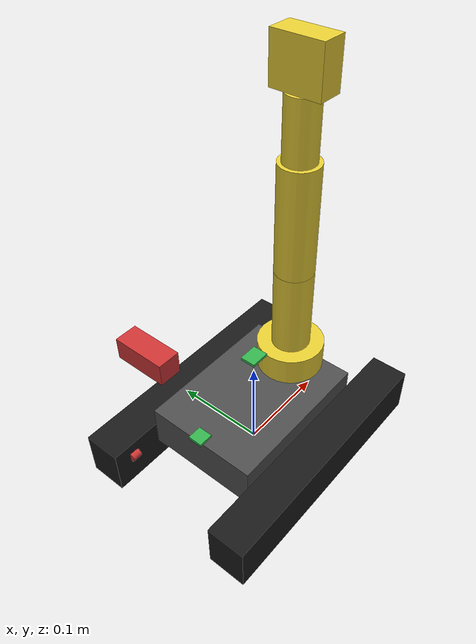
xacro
<?xml version="1.0"?>
<robot xmlns:xacro="http://www.ros.org/wiki/xacro" name="argos">

  <!-- Chassis dimensions (approximate — tracked Pi robot)                -->
  <xacro:property name="chassis_length"  value="0.165" /><!-- body/platform length (measured) -->
  <xacro:property name="track_length"   value="0.275" /><!-- track length end-to-end (measured) -->
  <xacro:property name="chassis_width"  value="0.120" /><!-- body width: total 200mm - 2x40mm tracks (measured) -->
  <xacro:property name="chassis_height" value="0.045" /><!-- body height: top at 70mm, track_radius=25mm -->
  <xacro:property name="track_radius"   value="0.025" /><!-- 50mm diameter drive wheels (measured) -->
  <xacro:property name="track_width"    value="0.040" /><!-- each track width (measured); connects at rear axle, ~90mm mid, front of body -->
  <xacro:property name="track_separation" value="${chassis_width + track_width}" />

  <!-- OWI-535 arm dimensions (approximate, metres)                       -->
  <xacro:property name="arm_base_height"    value="0.030" /><!-- chassis top (70mm) to shoulder pivot (100mm) = 30mm (measured) -->
  <xacro:property name="upper_arm_length"   value="0.090" /><!-- shoulder pivot to elbow pivot (Ljubljana paper + ARGOS measured) -->
  <xacro:property name="forearm_length"     value="0.113" /><!-- elbow pivot to wrist pivot (Ljubljana paper + ARGOS measured) -->
  <xacro:property name="wrist_length"       value="0.060" /><!-- wrist pivot to gripper scissor hinge (ARGOS measured) -->
  <xacro:property name="gripper_length"     value="0.045" /><!-- scissor hinge to finger tip, closed (ARGOS measured) -->
  <xacro:property name="arm_link_radius"    value="0.020" />

  <!-- Sensor mounting offsets from base_link centre                       -->
  <xacro:property name="imu_x"     value="0.0"   />
  <xacro:property name="imu_y"     value="0.0"   />
  <xacro:property name="imu_z"     value="0.050" />

  <!-- sonar is now arm-mounted (on wrist, above gripper) — offset below -->
  <xacro:property name="sonar_wrist_z" value="0.030" />

  <xacro:property name="camera_x"  value="-0.060" />
  <xacro:property name="camera_y"  value="0.085"  />
  <xacro:property name="camera_z"  value="0.090"  />

  <!-- IR sensors face rearward (parking sensors), just inside tracks -->
  <xacro:property name="ir1_x"     value="-0.115"/>
  <xacro:property name="ir1_y"     value="-0.060"/>
  <xacro:property name="ir1_z"     value="0.008" />

  <xacro:property name="ir2_x"     value="-0.115"/>
  <xacro:property name="ir2_y"     value="0.060" />
  <xacro:property name="ir2_z"     value="0.008" />

  <!-- arm base is at front-centre of chassis top, sitting directly on the surface -->
  <xacro:property name="arm_base_x" value="0.060" />
  <xacro:property name="arm_base_y" value="0.0"   />
  <xacro:property name="arm_base_z" value="0.0"   />

  <!-- Materials                                                          -->
  <material name="dark_grey">
    <color rgba="0.3 0.3 0.3 1.0" />
  </material>
  <material name="black">
    <color rgba="0.1 0.1 0.1 1.0" />
  </material>
  <material name="yellow">
    <color rgba="0.9 0.8 0.2 1.0" />
  </material>
  <material name="blue">
    <color rgba="0.2 0.4 0.8 1.0" />
  </material>
  <material name="red">
    <color rgba="0.8 0.2 0.2 1.0" />
  </material>
  <material name="green">
    <color rgba="0.2 0.7 0.3 1.0" />
  </material>

  <!-- Base link — chassis                                                -->
  <link name="base_link">
    <visual>
      <geometry>
        <box size="${chassis_length} ${chassis_width} ${chassis_height}" />
      </geometry>
      <origin xyz="0 0 ${track_radius + chassis_height / 2}" rpy="0 0 0" />
      <material name="dark_grey" />
    </visual>
    <collision>
      <geometry>
        <box size="${chassis_length} ${chassis_width} ${chassis_height}" />
      </geometry>
      <origin xyz="0 0 ${track_radius + chassis_height / 2}" rpy="0 0 0" />
    </collision>
    <inertial>
      <mass value="1.5" />
      <inertia ixx="0.01" ixy="0" ixz="0" iyy="0.01" iyz="0" izz="0.01" />
      <origin xyz="0 0 ${track_radius + chassis_height / 2}" rpy="0 0 0" />
    </inertial>
  </link>

  <!-- Tracks (visual only — no joints, tracks are non-articulated)       -->
  <xacro:macro name="track" params="side y_offset">
    <link name="${side}_track_link">
      <visual>
        <geometry>
          <box size="${track_length} ${track_width} ${track_radius * 2}" />
        </geometry>
        <material name="black" />
      </visual>
      <collision>
        <geometry>
          <box size="${track_length} ${track_width} ${track_radius * 2}" />
        </geometry>
      </collision>
      <inertial>
        <mass value="0.2" />
        <inertia ixx="0.001" ixy="0" ixz="0" iyy="0.001" iyz="0" izz="0.001" />
      </inertial>
    </link>

    <joint name="${side}_track_joint" type="fixed">
      <parent link="base_link" />
      <child link="${side}_track_link" />
      <origin xyz="0 ${y_offset} ${track_radius}" rpy="0 0 0" />
    </joint>
  </xacro:macro>

  <xacro:track side="left"  y_offset="${track_separation / 2}" />
  <xacro:track side="right" y_offset="${-track_separation / 2}" />

  <!-- Sensors                                                            -->

  <!-- IMU (MPU-6050) — centre of chassis -->
  <link name="imu_link">
    <visual>
      <geometry>
        <box size="0.020 0.016 0.003" />
      </geometry>
      <material name="green" />
    </visual>
  </link>
  <joint name="imu_joint" type="fixed">
    <parent link="base_link" />
    <child link="imu_link" />
    <origin xyz="${imu_x} ${imu_y} ${track_radius + chassis_height + imu_z}" rpy="0 0 0" />
  </joint>

  <!-- Sonar (HC-SR04) — mounted on wrist, above gripper attachment -->
  <!-- Moves with the arm so it can scan by sweeping joints -->
  <link name="sonar_link">
    <visual>
      <geometry>
        <cylinder radius="0.008" length="0.015" />
      </geometry>
      <origin xyz="0 0 0" rpy="0 ${pi/2} 0" />
      <material name="blue" />
    </visual>
  </link>
  <joint name="sonar_joint" type="fixed">
    <parent link="wrist_link" />
    <child link="sonar_link" />
    <!-- 3 cm above wrist origin, pointing along the wrist/gripper axis -->
    <origin xyz="0 0 ${sonar_wrist_z}" rpy="0 0 0" />
  </joint>

  <!-- Camera — side of chassis towards rear, facing forward -->
  <link name="camera_link">
    <visual>
      <geometry>
        <box size="0.025 0.060 0.025" />
      </geometry>
      <material name="red" />
    </visual>
  </link>
  <joint name="camera_joint" type="fixed">
    <parent link="base_link" />
    <child link="camera_link" />
    <origin xyz="${camera_x} ${camera_y} ${track_radius + camera_z}" rpy="0 0 0" />
  </joint>

  <!-- Camera optical frame (Z forward, X right, Y down — REP-103) -->
  <link name="camera_optical_link" />
  <joint name="camera_optical_joint" type="fixed">
    <parent link="camera_link" />
    <child link="camera_optical_link" />
    <origin xyz="0 0 0" rpy="${-pi/2} 0 ${-pi/2}" />
  </joint>

  <!-- IR sensors — rear-facing parking sensors, just inside tracks -->
  <xacro:macro name="ir_sensor" params="name x y z">
    <link name="${name}_link">
      <visual>
        <geometry>
          <cylinder radius="0.005" length="0.010" />
        </geometry>
        <origin xyz="0 0 0" rpy="0 ${pi/2} 0" />
        <material name="red" />
      </visual>
    </link>
    <joint name="${name}_joint" type="fixed">
      <parent link="base_link" />
      <child link="${name}_link" />
      <!-- facing rearward (pi yaw), low to ground -->
      <origin xyz="${x} ${y} ${track_radius + z}" rpy="0 0 ${pi}" />
    </joint>
  </xacro:macro>

  <xacro:ir_sensor name="ir1" x="${ir1_x}" y="${ir1_y}" z="${ir1_z}" />
  <xacro:ir_sensor name="ir2" x="${ir2_x}" y="${ir2_y}" z="${ir2_z}" />

  <!-- OWI-535 Arm                                                        -->

  <!-- Arm base (turntable mount — fixed for now, OWI-535 base rotation   -->
  <!-- is not motorised on this build)                                    -->
  <link name="arm_base_link">
    <visual>
      <geometry>
        <cylinder radius="0.035" length="${arm_base_height}" />
      </geometry>
      <origin xyz="0 0 ${arm_base_height / 2}" rpy="0 0 0" />
      <material name="yellow" />
    </visual>
    <collision>
      <geometry>
        <cylinder radius="0.035" length="${arm_base_height}" />
      </geometry>
      <origin xyz="0 0 ${arm_base_height / 2}" rpy="0 0 0" />
    </collision>
    <inertial>
      <mass value="0.15" />
      <inertia ixx="0.0001" ixy="0" ixz="0" iyy="0.0001" iyz="0" izz="0.0001" />
      <origin xyz="0 0 ${arm_base_height / 2}" rpy="0 0 0" />
    </inertial>
  </link>

  <joint name="arm_base_joint" type="fixed">
    <parent link="base_link" />
    <child link="arm_base_link" />
    <origin xyz="${arm_base_x} ${arm_base_y} ${track_radius + chassis_height + arm_base_z}"
            rpy="0 0 0" />
  </joint>

  <!-- Shoulder — rotates in pitch (Y axis) -->
  <link name="shoulder_link">
    <visual>
      <geometry>
        <cylinder radius="${arm_link_radius}" length="${upper_arm_length}" />
      </geometry>
      <origin xyz="0 0 ${upper_arm_length / 2}" rpy="0 0 0" />
      <material name="yellow" />
    </visual>
    <collision>
      <geometry>
        <cylinder radius="${arm_link_radius}" length="${upper_arm_length}" />
      </geometry>
      <origin xyz="0 0 ${upper_arm_length / 2}" rpy="0 0 0" />
    </collision>
    <inertial>
      <mass value="0.10" />
      <inertia ixx="0.0002" ixy="0" ixz="0" iyy="0.0002" iyz="0" izz="0.00005" />
      <origin xyz="0 0 ${upper_arm_length / 2}" rpy="0 0 0" />
    </inertial>
  </link>

  <joint name="shoulder_joint" type="revolute">
    <parent link="arm_base_link" />
    <child link="shoulder_link" />
    <origin xyz="0 0 ${arm_base_height}" rpy="0 0 0" />
    <axis xyz="0 1 0" />
    <limit lower="${-pi/2}" upper="${pi/2}" effort="5.0" velocity="1.5" />
  </joint>

  <!-- Elbow — rotates in pitch (Y axis) -->
  <link name="elbow_link">
    <visual>
      <geometry>
        <cylinder radius="${arm_link_radius}" length="${forearm_length}" />
      </geometry>
      <origin xyz="0 0 ${forearm_length / 2}" rpy="0 0 0" />
      <material name="yellow" />
    </visual>
    <collision>
      <geometry>
        <cylinder radius="${arm_link_radius}" length="${forearm_length}" />
      </geometry>
      <origin xyz="0 0 ${forearm_length / 2}" rpy="0 0 0" />
    </collision>
    <inertial>
      <mass value="0.08" />
      <inertia ixx="0.00015" ixy="0" ixz="0" iyy="0.00015" iyz="0" izz="0.00003" />
      <origin xyz="0 0 ${forearm_length / 2}" rpy="0 0 0" />
    </inertial>
  </link>

  <joint name="elbow_joint" type="revolute">
    <parent link="shoulder_link" />
    <child link="elbow_link" />
    <origin xyz="0 0 ${upper_arm_length}" rpy="0 0 0" />
    <axis xyz="0 1 0" />
    <limit lower="${-pi/2}" upper="${pi/2}" effort="3.0" velocity="1.5" />
  </joint>

  <!-- Wrist — rotates in pitch (Y axis) -->
  <link name="wrist_link">
    <visual>
      <geometry>
        <cylinder radius="${arm_link_radius * 0.8}" length="${wrist_length}" />
      </geometry>
      <origin xyz="0 0 ${wrist_length / 2}" rpy="0 0 0" />
      <material name="yellow" />
    </visual>
    <collision>
      <geometry>
        <cylinder radius="${arm_link_radius * 0.8}" length="${wrist_length}" />
      </geometry>
      <origin xyz="0 0 ${wrist_length / 2}" rpy="0 0 0" />
    </collision>
    <inertial>
      <mass value="0.04" />
      <inertia ixx="0.00002" ixy="0" ixz="0" iyy="0.00002" iyz="0" izz="0.00001" />
      <origin xyz="0 0 ${wrist_length / 2}" rpy="0 0 0" />
    </inertial>
  </link>

  <joint name="wrist_joint" type="revolute">
    <parent link="elbow_link" />
    <child link="wrist_link" />
    <origin xyz="0 0 ${forearm_length}" rpy="0 0 0" />
    <axis xyz="0 1 0" />
    <limit lower="${-pi/2}" upper="${pi/2}" effort="2.0" velocity="1.5" />
  </joint>

  <!-- Gripper — simplified as a single prismatic joint -->
  <link name="gripper_link">
    <visual>
      <geometry>
        <box size="0.025 0.050 ${gripper_length}" />
      </geometry>
      <origin xyz="0 0 ${gripper_length / 2}" rpy="0 0 0" />
      <material name="yellow" />
    </visual>
    <collision>
      <geometry>
        <box size="0.025 0.050 ${gripper_length}" />
      </geometry>
      <origin xyz="0 0 ${gripper_length / 2}" rpy="0 0 0" />
    </collision>
    <inertial>
      <mass value="0.05" />
      <inertia ixx="0.00002" ixy="0" ixz="0" iyy="0.00002" iyz="0" izz="0.00001" />
      <origin xyz="0 0 ${gripper_length / 2}" rpy="0 0 0" />
    </inertial>
  </link>

  <joint name="gripper_joint" type="revolute">
    <parent link="wrist_link" />
    <child link="gripper_link" />
    <origin xyz="0 0 ${wrist_length}" rpy="0 0 0" />
    <axis xyz="1 0 0" /><!-- scissoring action: fingers spread perpendicular to arm reach plane -->
    <limit lower="0.0" upper="0.6" effort="2.0" velocity="1.0" /><!-- 0=closed, ~0.6 rad = ~34° = fully open (5 cm gap) -->
  </joint>

  <!-- Gripper tip (for end-effector reference) -->
  <link name="gripper_tip_link" />
  <joint name="gripper_tip_joint" type="fixed">
    <parent link="gripper_link" />
    <child link="gripper_tip_link" />
    <origin xyz="0 0 ${gripper_length}" rpy="0 0 0" />
  </joint>

  <!-- Body-mounted motion sensor (Flotilla LSM303D on Raspberry Pi)      -->
  <!-- Flat on Pi at rear of chassis, arrow silkscreen pointing right     -->
  <!-- (module X axis = robot -Y), so yaw -90°                           -->
  <link name="body_motion_link">
    <visual>
      <geometry>
        <box size="0.015 0.015 0.003" />
      </geometry>
      <material name="green" />
    </visual>
  </link>
  <joint name="body_motion_joint" type="fixed">
    <parent link="base_link" />
    <child link="body_motion_link" />
    <!-- rear of chassis, on top of Pi, lying flat, arrow pointing right -->
    <origin xyz="-0.080 0 ${track_radius + chassis_height + 0.005}"
            rpy="0 0 ${-pi/2}" />
  </joint>

  <!-- Arm-mounted motion sensor (Flotilla LSM303D on elbow link)         -->
  <link name="arm_motion_link">
    <visual>
      <geometry>
        <box size="0.015 0.015 0.003" />
      </geometry>
      <material name="green" />
    </visual>
  </link>
  <joint name="arm_motion_joint" type="fixed">
    <parent link="elbow_link" />
    <child link="arm_motion_link" />
    <origin xyz="0 0 ${forearm_length * 0.5}" rpy="0 0 0" />
  </joint>

</robot>
